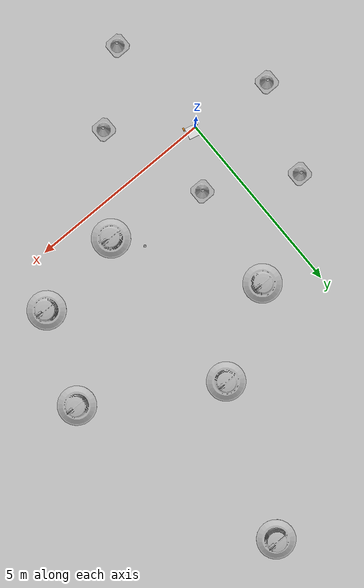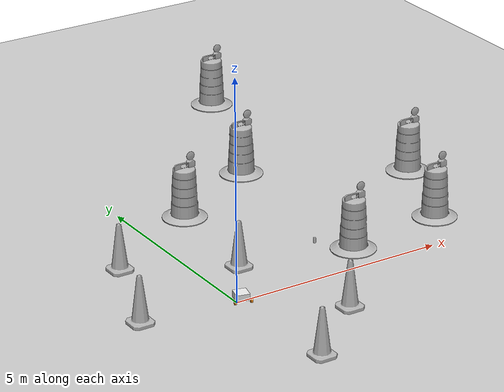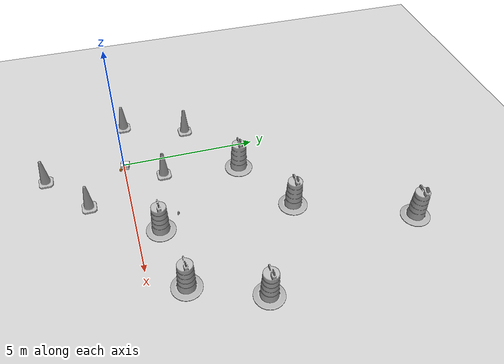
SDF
<sdf version="1.7">
 <world name="default">
  <light name="sun" type="directional">
   <pose>0 0 10 0 -0 0</pose>
   <diffuse>0.8 0.8 0.8 1</diffuse>
   <specular>0.2 0.2 0.2 1</specular>
   <attenuation>
    <range>1000</range>
    <constant>0.9</constant>
    <linear>0.01</linear>
    <quadratic>0.001</quadratic>
   </attenuation>
   <direction>-0.5 0.1 -0.9</direction>
   <spot><inner_angle>0</inner_angle><outer_angle>0</outer_angle><falloff>0</falloff></spot>
  </light>
  <model name="ground_plane">
   <static>1</static>
   <link name="link">
    <collision name="collision">
     <geometry><plane><normal>0 0 1</normal><size>100 100</size></plane></geometry>
     <surface><friction><ode><mu>100</mu><mu2>50</mu2></ode></friction></surface>
    </collision>
    <visual name="visual">
     <cast_shadows>0</cast_shadows>
     <geometry><plane><normal>0 0 1</normal><size>100 100</size></plane></geometry>
     <material>
      <script><uri>file://media/materials/scripts/gazebo.material</uri><name>Gazebo/Grey</name></script>
     </material>
    </visual>
   </link>
  </model>
  <gravity>0 0 -9.8</gravity>
  <magnetic_field>6e-06 2.3e-05 -4.2e-05</magnetic_field>
  <atmosphere type="adiabatic"/>
  <physics type="ode">
   <max_step_size>0.001</max_step_size>
   <real_time_factor>1</real_time_factor>
   <real_time_update_rate>1000</real_time_update_rate>
  </physics>
  <scene><ambient>0.4 0.4 0.4 1</ambient><background>0.7 0.7 0.7 1</background><shadows>1</shadows></scene>
  <audio><device>default</device></audio>
  <spherical_coordinates>
   <surface_model>EARTH_WGS84</surface_model>
   <latitude_deg>0</latitude_deg>
   <longitude_deg>0</longitude_deg>
   <elevation>0</elevation>
   <heading_deg>0</heading_deg>
  </spherical_coordinates>
  <model name="my_bot">
   <link name="base_link">
    <inertial>
     <pose>0.065 0 0.0625 0 -0 0</pose>
     <mass>0.6</mass>
     <inertia>
      <ixx>0.00525625</ixx>
      <ixy>0</ixy>
      <ixz>0.0005625</ixz>
      <iyy>0.00593125</iyy>
      <iyz>0</iyz>
      <izz>0.008275</izz>
     </inertia>
    </inertial>
    <collision name="base_link_fixed_joint_lump__chassis_collision">
     <pose>0.05 0 0.075 0 -0 0</pose>
     <geometry><box><size>0.3 0.3 0.15</size></box></geometry>
    </collision>
    <collision name="base_link_fixed_joint_lump__caster_wheel_collision_1">
     <pose>0.14 0 0 0 -0 0</pose>
     <geometry><sphere><radius>0.05</radius></sphere></geometry>
     <surface><friction><ode><mu>1e-05</mu><mu2>1e-05</mu2></ode></friction></surface>
    </collision>
    <visual name="base_link_fixed_joint_lump__chassis_visual">
     <pose>0.05 0 0.075 0 -0 0</pose>
     <geometry><box><size>0.3 0.3 0.15</size></box></geometry>
     <material>
      <script><name>Gazebo/White</name><uri>file://media/materials/scripts/gazebo.material</uri></script>
     </material>
    </visual>
    <visual name="base_link_fixed_joint_lump__caster_wheel_visual_1">
     <pose>0.14 0 0 0 -0 0</pose>
     <geometry><sphere><radius>0.05</radius></sphere></geometry>
     <material>
      <script><name>Gazebo/Red</name><uri>file://media/materials/scripts/gazebo.material</uri></script>
     </material>
    </visual>
   </link>
   <joint name="left_wheel_joint" type="revolute">
    <pose relative_to="base_link">-0.1 0.175 0 -1.5708 0 0</pose>
    <parent>base_link</parent>
    <child>left_wheel</child>
    <axis>
     <xyz>0 0 1</xyz>
     <limit><lower>-1e+16</lower><upper>1e+16</upper></limit>
     <dynamics><spring_reference>0</spring_reference><spring_stiffness>0</spring_stiffness></dynamics>
    </axis>
   </joint>
   <link name="left_wheel">
    <pose relative_to="left_wheel_joint">0 0 0 0 -0 0</pose>
    <inertial>
     <mass>0.1</mass>
     <inertia>
      <ixx>7.58333e-05</ixx>
      <ixy>0</ixy>
      <ixz>0</ixz>
      <iyy>7.58333e-05</iyy>
      <iyz>0</iyz>
      <izz>0.000125</izz>
     </inertia>
    </inertial>
    <collision name="left_wheel_collision">
     <geometry><cylinder><length>0.04</length><radius>0.05</radius></cylinder></geometry>
    </collision>
    <visual name="left_wheel_visual">
     <geometry><cylinder><length>0.04</length><radius>0.05</radius></cylinder></geometry>
     <material>
      <script><name>Gazebo/Orange</name><uri>file://media/materials/scripts/gazebo.material</uri></script>
     </material>
    </visual>
   </link>
   <joint name="right_wheel_joint" type="revolute">
    <pose relative_to="base_link">-0.1 -0.175 0 1.5708 -0 0</pose>
    <parent>base_link</parent>
    <child>right_wheel</child>
    <axis>
     <xyz>0 0 -1</xyz>
     <limit><lower>-1e+16</lower><upper>1e+16</upper></limit>
     <dynamics><spring_reference>0</spring_reference><spring_stiffness>0</spring_stiffness></dynamics>
    </axis>
   </joint>
   <link name="right_wheel">
    <pose relative_to="right_wheel_joint">0 0 0 0 -0 0</pose>
    <inertial>
     <mass>0.1</mass>
     <inertia>
      <ixx>7.58333e-05</ixx>
      <ixy>0</ixy>
      <ixz>0</ixz>
      <iyy>7.58333e-05</iyy>
      <iyz>0</iyz>
      <izz>0.000125</izz>
     </inertia>
    </inertial>
    <collision name="right_wheel_collision">
     <geometry><cylinder><length>0.04</length><radius>0.05</radius></cylinder></geometry>
    </collision>
    <visual name="right_wheel_visual">
     <geometry><cylinder><length>0.04</length><radius>0.05</radius></cylinder></geometry>
     <material>
      <script><name>Gazebo/Orange</name><uri>file://media/materials/scripts/gazebo.material</uri></script>
     </material>
    </visual>
   </link>
   <static>0</static>
   <plugin name="diff_drive" filename="libgazebo_ros_diff_drive.so">
    <left_joint>left_wheel_joint</left_joint>
    <right_joint>right_wheel_joint</right_joint>
    <wheel_separation>0.35</wheel_separation>
    <wheel_diameter>0.1</wheel_diameter>
    <max_wheel_torque>200</max_wheel_torque>
    <max_wheel_acceleration>10.0</max_wheel_acceleration>
    <odometry_topic>odom</odometry_topic>
    <odometry_frame>odom</odometry_frame>
    <robot_base_frame>base_link</robot_base_frame>
    <publish_odom>1</publish_odom>
    <publish_odom_tf>1</publish_odom_tf>
    <publish_wheel_tf>1</publish_wheel_tf>
   </plugin>
   <pose>0.124945 -0.001458 0.05 1e-06 1e-06 1.33223</pose>
  </model>
  <model name="Construction Barrel">
   <link name="link">
    <inertial>
     <pose>0 0 0.4 0 -0 0</pose>
     <mass>500</mass>
     <inertia><ixx>51.2096</ixx><iyy>51.2096</iyy><izz>25</izz><ixy>0</ixy><ixz>0</ixz><iyz>0</iyz></inertia>
    </inertial>
    <collision name="collision">
     <geometry><mesh><uri>model://construction_barrel/meshes/construction_barrel.dae</uri></mesh></geometry>
    </collision>
    <visual name="visual">
     <geometry><mesh><uri>model://construction_barrel/meshes/construction_barrel.dae</uri></mesh></geometry>
    </visual>
   </link>
   <pose>1.23686 4.15202 1e-06 3e-06 2e-06 -2e-05</pose>
  </model>
  <model name="coke_can">
   <link name="link">
    <inertial>
     <pose>0 0 0.06 0 -0 0</pose>
     <mass>0.39</mass>
     <inertia>
      <ixx>0.00055575</ixx>
      <ixy>0</ixy>
      <ixz>0</ixz>
      <iyy>0.00055575</iyy>
      <iyz>0</iyz>
      <izz>0.0001755</izz>
     </inertia>
    </inertial>
    <collision name="collision">
     <pose>0.003937 0.004724 -0.18 0 -0 0</pose>
     <geometry><mesh><uri>model://coke_can/meshes/coke_can.dae</uri></mesh></geometry>
     <surface>
      <friction><ode><mu>1</mu><mu2>1</mu2></ode></friction>
      <contact><ode><kp>1e+07</kp><kd>1</kd><min_depth>0.001</min_depth><max_vel>0.1</max_vel></ode></contact>
     </surface>
    </collision>
    <visual name="visual">
     <pose>0.003937 0.004724 -0.18 0 -0 0</pose>
     <geometry><mesh><uri>model://coke_can/meshes/coke_can.dae</uri></mesh></geometry>
    </visual>
   </link>
   <pose>2.9317 1.50041 -0.003107 -0.057105 -0.011188 -0.000702</pose>
  </model>
  <model name="Construction Barrel_0">
   <link name="link">
    <inertial>
     <pose>0 0 0.4 0 -0 0</pose>
     <mass>500</mass>
     <inertia><ixx>51.2096</ixx><iyy>51.2096</iyy><izz>25</izz><ixy>0</ixy><ixz>0</ixz><iyz>0</iyz></inertia>
    </inertial>
    <collision name="collision">
     <geometry><mesh><uri>model://construction_barrel/meshes/construction_barrel.dae</uri></mesh></geometry>
    </collision>
    <visual name="visual">
     <geometry><mesh><uri>model://construction_barrel/meshes/construction_barrel.dae</uri></mesh></geometry>
    </visual>
   </link>
   <pose>5.90257 1.15784 -2e-06 8e-06 -4e-06 -1.7e-05</pose>
  </model>
  <model name="Construction Barrel_1">
   <link name="link">
    <inertial>
     <pose>0 0 0.4 0 -0 0</pose>
     <mass>500</mass>
     <inertia><ixx>51.2096</ixx><iyy>51.2096</iyy><izz>25</izz><ixy>0</ixy><ixz>0</ixz><iyz>0</iyz></inertia>
    </inertial>
    <collision name="collision">
     <geometry><mesh><uri>model://construction_barrel/meshes/construction_barrel.dae</uri></mesh></geometry>
    </collision>
    <visual name="visual">
     <geometry><mesh><uri>model://construction_barrel/meshes/construction_barrel.dae</uri></mesh></geometry>
    </visual>
   </link>
   <pose>5.143 9.38703 -1e-06 3e-06 7e-06 -1.5e-05</pose>
  </model>
  <model name="Construction Barrel_2">
   <link name="link">
    <inertial>
     <pose>0 0 0.4 0 -0 0</pose>
     <mass>500</mass>
     <inertia><ixx>51.2096</ixx><iyy>51.2096</iyy><izz>25</izz><ixy>0</ixy><ixz>0</ixz><iyz>0</iyz></inertia>
    </inertial>
    <collision name="collision">
     <geometry><mesh><uri>model://construction_barrel/meshes/construction_barrel.dae</uri></mesh></geometry>
    </collision>
    <visual name="visual">
     <geometry><mesh><uri>model://construction_barrel/meshes/construction_barrel.dae</uri></mesh></geometry>
    </visual>
   </link>
   <pose>6.86224 3.51964 0 0 0 -1.5e-05</pose>
  </model>
  <model name="Construction Barrel_3">
   <link name="link">
    <inertial>
     <pose>0 0 0.4 0 -0 0</pose>
     <mass>500</mass>
     <inertia><ixx>51.2096</ixx><iyy>51.2096</iyy><izz>25</izz><ixy>0</ixy><ixz>0</ixz><iyz>0</iyz></inertia>
    </inertial>
    <collision name="collision">
     <geometry><mesh><uri>model://construction_barrel/meshes/construction_barrel.dae</uri></mesh></geometry>
    </collision>
    <visual name="visual">
     <geometry><mesh><uri>model://construction_barrel/meshes/construction_barrel.dae</uri></mesh></geometry>
    </visual>
   </link>
   <pose>3.46753 0.800728 -0 1e-06 -1e-06 -1.2e-05</pose>
  </model>
  <model name="Construction Barrel_4">
   <link name="link">
    <inertial>
     <pose>0 0 0.4 0 -0 0</pose>
     <mass>500</mass>
     <inertia><ixx>51.2096</ixx><iyy>51.2096</iyy><izz>25</izz><ixy>0</ixy><ixz>0</ixz><iyz>0</iyz></inertia>
    </inertial>
    <collision name="collision">
     <geometry><mesh><uri>model://construction_barrel/meshes/construction_barrel.dae</uri></mesh></geometry>
    </collision>
    <visual name="visual">
     <geometry><mesh><uri>model://construction_barrel/meshes/construction_barrel.dae</uri></mesh></geometry>
    </visual>
   </link>
   <pose>3.54765 5.47896 -1e-06 0 5e-06 -1e-05</pose>
  </model>
  <model name="Construction Cone">
   <link name="link">
    <collision name="collision">
     <geometry>
      <mesh><scale>10 10 10</scale><uri>model://construction_cone/meshes/construction_cone.dae</uri></mesh>
     </geometry>
    </collision>
    <visual name="visual">
     <geometry>
      <mesh><scale>10 10 10</scale><uri>model://construction_cone/meshes/construction_cone.dae</uri></mesh>
     </geometry>
    </visual>
    <inertial>
     <inertia><ixx>1</ixx><ixy>0</ixy><ixz>0</ixz><iyy>1</iyy><iyz>0</iyz><izz>1</izz></inertia>
     <mass>1</mass>
    </inertial>
   </link>
   <pose>-1.28071 2.61632 -0 0 -0 0</pose>
  </model>
  <model name="Construction Cone_0">
   <link name="link">
    <collision name="collision">
     <geometry>
      <mesh><scale>10 10 10</scale><uri>model://construction_cone/meshes/construction_cone.dae</uri></mesh>
     </geometry>
    </collision>
    <visual name="visual">
     <geometry>
      <mesh><scale>10 10 10</scale><uri>model://construction_cone/meshes/construction_cone.dae</uri></mesh>
     </geometry>
    </visual>
    <inertial>
     <inertia><ixx>1</ixx><ixy>0</ixy><ixz>0</ixz><iyy>1</iyy><iyz>0</iyz><izz>1</izz></inertia>
     <mass>1</mass>
    </inertial>
   </link>
   <pose>1.83531 -1.44389 0 -0 -0 -0</pose>
  </model>
  <model name="Construction Cone_1">
   <link name="link">
    <collision name="collision">
     <geometry>
      <mesh><scale>10 10 10</scale><uri>model://construction_cone/meshes/construction_cone.dae</uri></mesh>
     </geometry>
    </collision>
    <visual name="visual">
     <geometry>
      <mesh><scale>10 10 10</scale><uri>model://construction_cone/meshes/construction_cone.dae</uri></mesh>
     </geometry>
    </visual>
    <inertial>
     <inertia><ixx>1</ixx><ixy>0</ixy><ixz>0</ixz><iyy>1</iyy><iyz>0</iyz><izz>1</izz></inertia>
     <mass>1</mass>
    </inertial>
   </link>
   <pose>-2.12701 0.28409 -9e-06 -1e-06 -0 -0</pose>
  </model>
  <model name="Construction Cone_2">
   <link name="link">
    <collision name="collision">
     <geometry>
      <mesh><scale>10 10 10</scale><uri>model://construction_cone/meshes/construction_cone.dae</uri></mesh>
     </geometry>
    </collision>
    <visual name="visual">
     <geometry>
      <mesh><scale>10 10 10</scale><uri>model://construction_cone/meshes/construction_cone.dae</uri></mesh>
     </geometry>
    </visual>
    <inertial>
     <inertia><ixx>1</ixx><ixy>0</ixy><ixz>0</ixz><iyy>1</iyy><iyz>0</iyz><izz>1</izz></inertia>
     <mass>1</mass>
    </inertial>
   </link>
   <pose>0.196351 -2.86083 -0 0 -0 0</pose>
  </model>
  <model name="Construction Cone_3">
   <link name="link">
    <collision name="collision">
     <geometry>
      <mesh><scale>10 10 10</scale><uri>model://construction_cone/meshes/construction_cone.dae</uri></mesh>
     </geometry>
    </collision>
    <visual name="visual">
     <geometry>
      <mesh><scale>10 10 10</scale><uri>model://construction_cone/meshes/construction_cone.dae</uri></mesh>
     </geometry>
    </visual>
    <inertial>
     <inertia><ixx>1</ixx><ixy>0</ixy><ixz>0</ixz><iyy>1</iyy><iyz>0</iyz><izz>1</izz></inertia>
     <mass>1</mass>
    </inertial>
   </link>
   <pose>0.914961 1.37013 -0 0 -1e-06 0</pose>
  </model>
 </world>
</sdf>
